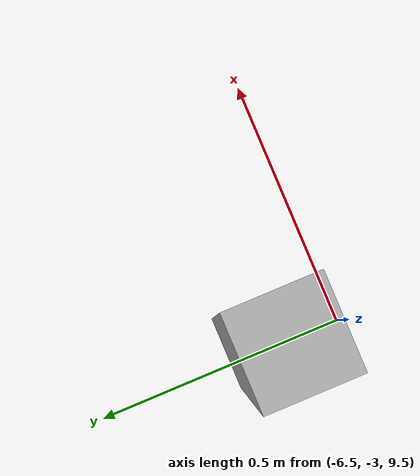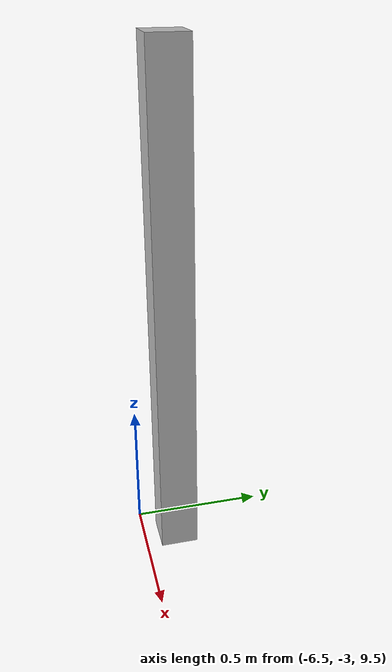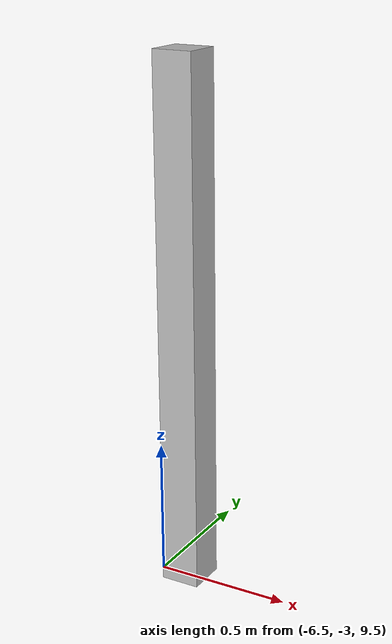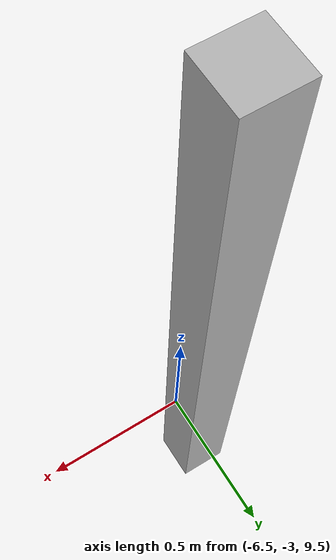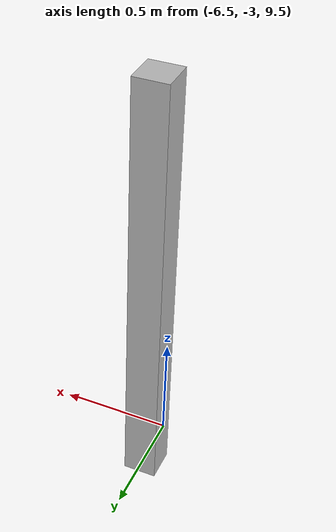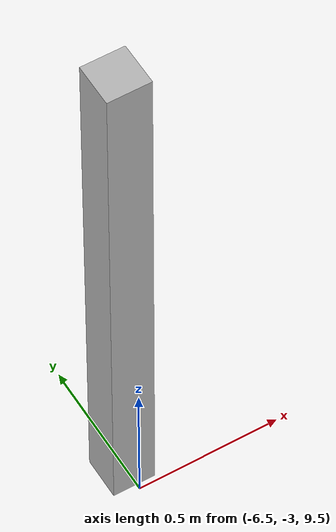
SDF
<sdf version="1.7">
 <world name="default">
  <model name="orthogonal_747_2.000.15_TS">
   <static>1</static>
   <link name="z_link_6_1_0">
    <inertial>
     <mass>1</mass>
     <inertia>
      <ixx>0.166667</ixx>
      <ixy>0</ixy>
      <ixz>0</ixz>
      <iyy>0.166667</iyy>
      <iyz>0</iyz>
      <izz>0.166667</izz>
     </inertia>
    </inertial>
    <pose>0 2.15 12.9 0 -0 0</pose>
    <visual name="visual_0">
     <laser_retro>5503</laser_retro>
     <geometry><box><size>0.15 1e-06 2</size></box></geometry>
     <material>
      <script><name>Gazebo/Grey</name><uri>file://media/materials/scripts/gazebo.material</uri></script>
      <shader type="pixel"><normal_map>__default__</normal_map></shader>
      <ambient>0.678 0.498 0.659 1</ambient>
      <diffuse>0.7 0.7 0.7 1</diffuse>
      <specular>0.01 0.01 0.01 1</specular>
      <emissive>0 0 0 1</emissive>
     </material>
     <pose>0 -0.075 0 0 -0 0</pose>
     <transparency>1</transparency>
    </visual>
    <visual name="visual_1">
     <laser_retro>5504</laser_retro>
     <geometry><box><size>0.15 1e-06 2</size></box></geometry>
     <material>
      <script><name>Gazebo/Grey</name><uri>file://media/materials/scripts/gazebo.material</uri></script>
      <shader type="pixel"><normal_map>__default__</normal_map></shader>
      <ambient>0.447 0.624 0.812 1</ambient>
      <diffuse>0.7 0.7 0.7 1</diffuse>
      <specular>0.01 0.01 0.01 1</specular>
      <emissive>0 0 0 1</emissive>
     </material>
     <pose>0 0.075 0 0 -0 0</pose>
     <transparency>1</transparency>
    </visual>
    <visual name="visual_2">
     <laser_retro>5505</laser_retro>
     <geometry><box><size>0.15 0.15 1e-06</size></box></geometry>
     <material>
      <script><name>Gazebo/Grey</name><uri>file://media/materials/scripts/gazebo.material</uri></script>
      <shader type="pixel"><normal_map>__default__</normal_map></shader>
      <ambient>0.988 0.686 0.243 1</ambient>
      <diffuse>0.7 0.7 0.7 1</diffuse>
      <specular>0.01 0.01 0.01 1</specular>
      <emissive>0 0 0 1</emissive>
     </material>
     <pose>0 0 -1 0 -0 0</pose>
     <transparency>1</transparency>
    </visual>
    <visual name="visual_3">
     <laser_retro>5506</laser_retro>
     <geometry><box><size>1e-06 0.15 2</size></box></geometry>
     <material>
      <script><name>Gazebo/Grey</name><uri>file://media/materials/scripts/gazebo.material</uri></script>
      <shader type="pixel"><normal_map>__default__</normal_map></shader>
      <ambient>0.988 0.914 0.31 1</ambient>
      <diffuse>0.7 0.7 0.7 1</diffuse>
      <specular>0.01 0.01 0.01 1</specular>
      <emissive>0 0 0 1</emissive>
     </material>
     <pose>0.075 0 0 0 -0 0</pose>
     <transparency>1</transparency>
    </visual>
    <visual name="visual_4">
     <laser_retro>5507</laser_retro>
     <geometry><box><size>0.15 0.15 1e-06</size></box></geometry>
     <material>
      <script><name>Gazebo/Grey</name><uri>file://media/materials/scripts/gazebo.material</uri></script>
      <shader type="pixel"><normal_map>__default__</normal_map></shader>
      <ambient>0.937 0.161 0.161 1</ambient>
      <diffuse>0.7 0.7 0.7 1</diffuse>
      <specular>0.01 0.01 0.01 1</specular>
      <emissive>0 0 0 1</emissive>
     </material>
     <pose>0 0 1 0 -0 0</pose>
     <transparency>1</transparency>
    </visual>
    <visual name="visual_5">
     <laser_retro>5508</laser_retro>
     <geometry><box><size>1e-06 0.15 2</size></box></geometry>
     <material>
      <script><name>Gazebo/Grey</name><uri>file://media/materials/scripts/gazebo.material</uri></script>
      <shader type="pixel"><normal_map>__default__</normal_map></shader>
      <ambient>0.541 0.886 0.204 1</ambient>
      <diffuse>0.7 0.7 0.7 1</diffuse>
      <specular>0.01 0.01 0.01 1</specular>
      <emissive>0 0 0 1</emissive>
     </material>
     <pose>-0.075 0 0 0 -0 0</pose>
     <transparency>1</transparency>
    </visual>
    <visual name="visual_texture">
     <geometry><box><size>0.149985 0.149985 1.9998</size></box></geometry>
     <material>
      <script>
       <uri>model://BASE_MODELS/simple_block_v2_textured/materials/scripts</uri>
       <uri>model://BASE_MODELS/simple_block_v2_textured/materials/textures</uri>
       <name>metal</name>
      </script>
     </material>
     <laser_retro>5509</laser_retro>
    </visual>
    <collision name="collision">
     <geometry><box><size>0.15 0.15 2</size></box></geometry>
     <surface>
      <friction>
       <ode><mu>1</mu><mu2>1</mu2><fdir1>0 0 0</fdir1><slip1>0</slip1><slip2>0</slip2></ode>
       <torsional>
        <coefficient>1</coefficient>
        <patch_radius>0</patch_radius>
        <surface_radius>0</surface_radius>
        <use_patch_radius>1</use_patch_radius>
        <ode><slip>0</slip></ode>
       </torsional>
      </friction>
      <bounce><restitution_coefficient>0</restitution_coefficient><threshold>1e+06</threshold></bounce>
      <contact>
       <collide_without_contact>0</collide_without_contact>
       <collide_without_contact_bitmask>1</collide_without_contact_bitmask>
       <collide_bitmask>1</collide_bitmask>
       <ode>
        <soft_cfm>0</soft_cfm>
        <soft_erp>0.2</soft_erp>
        <kp>1e+13</kp>
        <kd>1</kd>
        <max_vel>0.01</max_vel>
        <min_depth>0</min_depth>
       </ode>
       <bullet>
        <split_impulse>1</split_impulse>
        <split_impulse_penetration_threshold>-0.01</split_impulse_penetration_threshold>
        <soft_cfm>0</soft_cfm>
        <soft_erp>0.2</soft_erp>
        <kp>1e+13</kp>
        <kd>1</kd>
       </bullet>
      </contact>
     </surface>
    </collision>
   </link>
   <pose>-6.47624 -5 -2.5 0 -0 0</pose>
  </model>
 </world>
</sdf>
